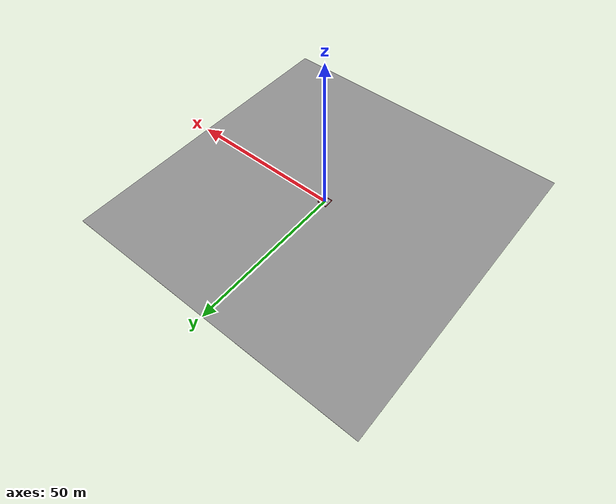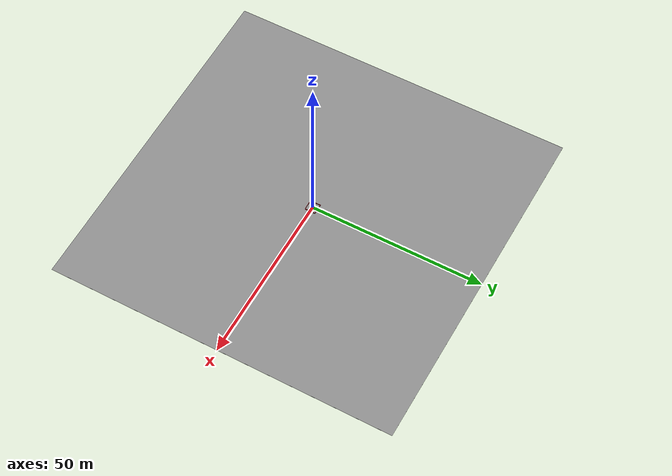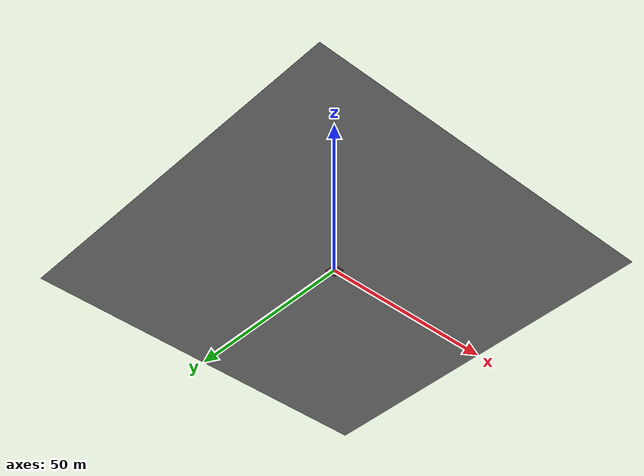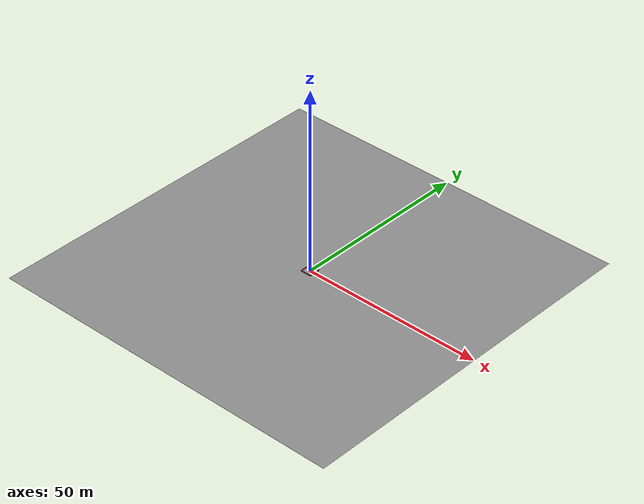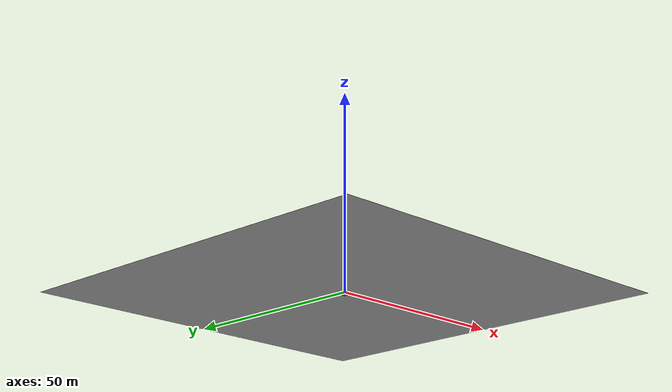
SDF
<?xml version='1.0'?>

<sdf version='1.6'>
  <model name='RaibertHopper2D'>
    <link name='ground'>
      <pose frame=''>0 0 -0.01 0 0 0</pose>
      <inertial>
        <pose frame=''>0 0 0 0 0 0</pose>
        <mass>10000</mass>
        <inertia>
          <ixx>10000</ixx>
          <ixy>0</ixy>
          <ixz>0</ixz>
          <iyy>10000</iyy>
          <iyz>0</iyz>
          <izz>10000</izz>
        </inertia>
      </inertial>
      <collision name='ground_collision'>
        <pose frame=''>0 0 -0.01 0 0 0</pose>
        <geometry>
          <box>
            <size>100.0 100.0 0.02</size>
          </box>
        </geometry>
      </collision>
      <visual name='ground_visual'>
        <pose frame=''>0 0 -0.01 0 0 0</pose>
        <geometry>
          <box>
            <size>100.0 100.0 0.02</size>
          </box>
        </geometry>
        <material>
          <diffuse>0.54 0.54 0.54 0.9</diffuse>
        </material>
      </visual>
    </link>

    <link name='body_pre_z'/>
    <link name='body_pre_theta'/>

    <link name='body'>
      <pose frame=''>0 0 0 0 0 0</pose>
      <inertial>
        <pose frame=''>0 0 0 0 0 0</pose>
        <mass>1.0</mass>
        <inertia>
          <ixx>1.0</ixx>
          <ixy>0</ixy>
          <ixz>0</ixz>
          <iyy>1.0</iyy>
          <iyz>0</iyz>
          <izz>1.0</izz>
        </inertia>
      </inertial>
      <visual name='body_visual_nx'>
        <pose frame=''>-1.5 0 0 0 0 0</pose>
        <geometry>
          <box>
            <size>0.1 3.0 0.5</size>
          </box>
        </geometry>
        <material>
          <diffuse>0.64 0.12 0.15 0.9</diffuse>
        </material>
      </visual>
      <visual name='body_visual_px'>
        <pose frame=''>1.5 0 0 0 0 0</pose>
        <geometry>
          <box>
            <size>0.1 3.0 0.5</size>
          </box>
        </geometry>
        <material>
          <diffuse>0.64 0.12 0.15 0.9</diffuse>
        </material>
      </visual>
      <visual name='body_visual_ny'>
        <pose frame=''>0 -1.5 0 0 0 0</pose>
        <geometry>
          <box>
            <size>3.0 0.1 0.5</size>
          </box>
        </geometry>
        <material>
          <diffuse>0.64 0.12 0.15 0.9</diffuse>
        </material>
      </visual>
      <visual name='body_visual_py'>
        <pose frame=''>0 1.5 0 0 0 0</pose>
        <geometry>
          <box>
            <size>3.0 0.1 0.5</size>
          </box>
        </geometry>
        <material>
          <diffuse>0.64 0.12 0.15 0.9</diffuse>
        </material>
      </visual>

      <collision name='body_collision_nx'>
        <pose frame=''>-1.5 0 0 0 0 0</pose>
        <geometry>
          <box>
            <size>0.1 3.0 0.5</size>
          </box>
        </geometry>
      </collision>
      <collision name='body_collision_px'>
        <pose frame=''>1.5 0 0 0 0 0</pose>
        <geometry>
          <box>
            <size>0.1 3.0 0.5</size>
          </box>
        </geometry>
      </collision>
    </link>

    <joint name='body_x' type='prismatic'>
      <child>body_pre_z</child>
      <parent>ground</parent>
      <axis>
        <xyz>1 0 0</xyz>
        <limit>
          <effort>0.0</effort>
        </limit>
        <dynamics>
          <damping>0</damping>
          <friction>0</friction>
          <spring_reference>0</spring_reference>
          <spring_stiffness>0</spring_stiffness>
        </dynamics>
        <use_parent_model_frame>1</use_parent_model_frame>
      </axis>
    </joint>
    <joint name='body_z' type='prismatic'>
      <child>body_pre_theta</child>
      <parent>body_pre_z</parent>
      <axis>
        <xyz>0 0 1</xyz>
        <limit>
          <effort>0.0</effort>
        </limit>
        <dynamics>
          <damping>0</damping>
          <friction>0</friction>
          <spring_reference>0</spring_reference>
          <spring_stiffness>0</spring_stiffness>
        </dynamics>
        <use_parent_model_frame>1</use_parent_model_frame>
      </axis>
    </joint>
    <joint name='body_theta' type='revolute'>
      <child>body</child>
      <parent>body_pre_theta</parent>
      <axis>
        <xyz>0 1 0</xyz>
        <limit>
          <effort>0.0</effort>
        </limit>
        <dynamics>
          <damping>0</damping>
          <friction>0</friction>
          <spring_reference>0</spring_reference>
          <spring_stiffness>0</spring_stiffness>
        </dynamics>
        <use_parent_model_frame>1</use_parent_model_frame>
      </axis>
    </joint>

    <link name='leg_thigh'>
      <visual name='body_visual_ny'>
        <pose frame=''>0 0.0 0 0 0 0</pose>
        <geometry>
          <box>
            <size>0.1 0.1 0.75</size>
          </box>
        </geometry>
        <material>
          <diffuse>0.9 0.9 0.9 0.9</diffuse>
        </material>
      </visual>
    </link>

    <joint name='thigh' type='revolute'>
      <child>leg_thigh</child>
      <parent>body</parent>
      <axis>
        <xyz>0 1 0</xyz>
        <dynamics>
          <damping>0</damping>
          <friction>0</friction>
          <spring_reference>0</spring_reference>
          <spring_stiffness>0</spring_stiffness>
        </dynamics>
        <use_parent_model_frame>1</use_parent_model_frame>
      </axis>
    </joint>

    <link name='foot'>
      <pose frame=''>0 0 0.0 0 0 0</pose>
      <inertial>
        <pose frame=''>0 0 0 0 0 0</pose>
        <mass>0.1</mass>
        <inertia>
          <ixx>0.01</ixx>
          <ixy>0</ixy>
          <ixz>0</ixz>
          <iyy>0.01</iyy>
          <iyz>0</iyz>
          <izz>0.01</izz>
        </inertia>
      </inertial>
      <collision name='foot_collision'>
        <pose frame=''>0 0 0 0 0 0</pose>
        <geometry>
          <box>
            <size>0.05 0.05 2.0</size>
          </box>
        </geometry>
      </collision>
      <visual name='foot_visual'>
        <pose frame=''>0 0 0 0 0 0</pose>
        <geometry>
          <box>
            <size>0.05 0.05 2.0</size>
          </box>
        </geometry>
        <material>
          <diffuse>0.9 0.9 0.9 0.9</diffuse>
        </material>
      </visual>
    </link>
    <joint name='extension' type='prismatic'>
      <child>foot</child>
      <parent>leg_thigh</parent>
      <axis>
        <xyz>0 0 -1</xyz>
        <limit>
          <upper>0.5</upper>
          <stiffness>10000</stiffness>
          <dissipation>1.0</dissipation>
        </limit>
        <dynamics>
          <damping>0</damping>
          <friction>0</friction>
          <spring_reference>0</spring_reference>
          <spring_stiffness>0</spring_stiffness>
        </dynamics>
        <use_parent_model_frame>1</use_parent_model_frame>
      </axis>
    </joint>

  </model>
</sdf>
